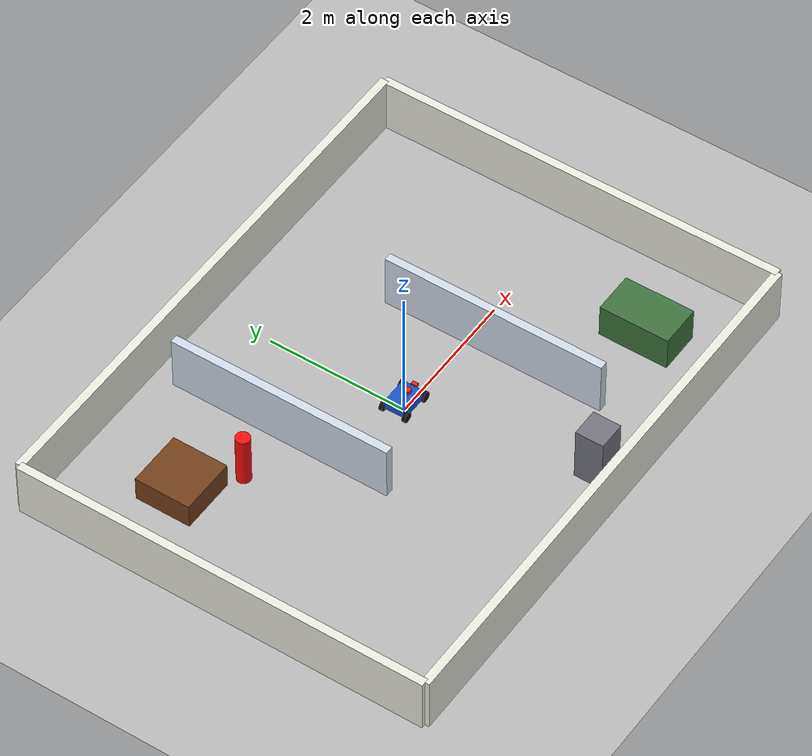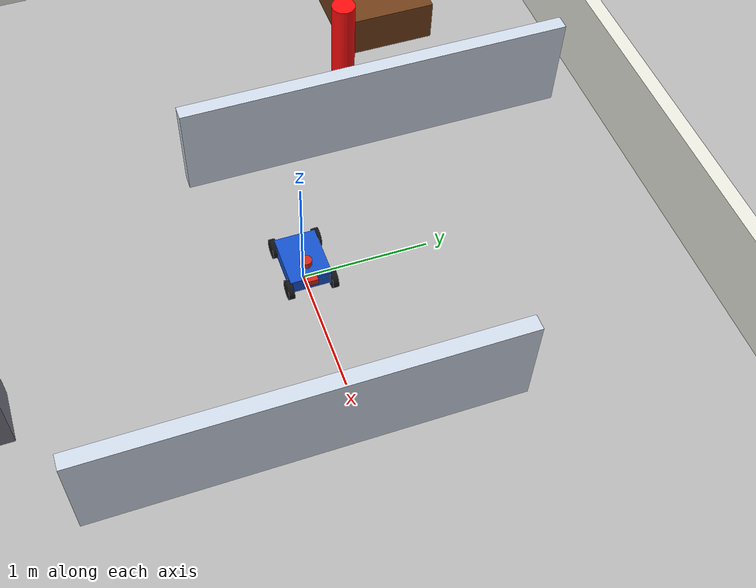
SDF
<?xml version="1.0"?>
<sdf version="1.9">
  <world name="three_room_house">
    <!-- 物理步长 1ms；real_time_factor 目标 1.0（WSL2 上实际常跑不满） -->
    <physics name="default_physics" type="ignored">
      <max_step_size>0.001</max_step_size>
      <real_time_factor>1.0</real_time_factor>
    </physics>

    <!-- Gazebo 世界必备的系统插件：物理引擎、用户命令、场景广播（GUI
         要靠它看到画面）、传感器渲染（激光/相机）、IMU 仿真 -->
    <plugin filename="gz-sim-physics-system" name="gz::sim::systems::Physics"/>
    <plugin filename="gz-sim-user-commands-system" name="gz::sim::systems::UserCommands"/>
    <plugin filename="gz-sim-scene-broadcaster-system" name="gz::sim::systems::SceneBroadcaster"/>
    <plugin filename="gz-sim-sensors-system" name="gz::sim::systems::Sensors">
      <render_engine>ogre2</render_engine>
    </plugin>
    <plugin filename="gz-sim-imu-system" name="gz::sim::systems::Imu"/>

    <scene>
      <ambient>0.7 0.7 0.7 1</ambient>
      <background>0.85 0.90 0.95 1</background>
      <shadows>true</shadows>
    </scene>

    <light name="sun" type="directional">
      <cast_shadows>true</cast_shadows>
      <pose>0 0 10 0 0 0</pose>
      <diffuse>0.9 0.9 0.9 1</diffuse>
      <specular>0.2 0.2 0.2 1</specular>
      <direction>-0.5 0.3 -1</direction>
    </light>

    <model name="ground">
      <static>true</static>
      <link name="ground_link">
        <collision name="collision"><geometry><plane><normal>0 0 1</normal><size>30 30</size></plane></geometry></collision>
        <visual name="visual">
          <geometry><plane><normal>0 0 1</normal><size>30 30</size></plane></geometry>
          <material><diffuse>0.72 0.72 0.72 1</diffuse></material>
        </visual>
      </link>
    </model>

    <!-- 房屋本体：static=true 表示不参与动力学（不会被撞动），
         所有墙和家具都挂在同一个 link 下，每件东西一对
         collision（物理碰撞体）+ visual（外观）。
         墙高 0.8m、厚 0.12m，激光安装高度 0.19m 能稳定扫到。 -->
    <model name="three_room_house">
      <static>true</static>
      <link name="walls">
        <collision name="north"><pose>0 2.95 0.4 0 0 0</pose><geometry><box><size>7.8 0.12 0.8</size></box></geometry></collision>
        <visual name="north_visual"><pose>0 2.95 0.4 0 0 0</pose><geometry><box><size>7.8 0.12 0.8</size></box></geometry><material><diffuse>0.92 0.92 0.88 1</diffuse></material></visual>
        <collision name="south"><pose>0 -2.95 0.4 0 0 0</pose><geometry><box><size>7.8 0.12 0.8</size></box></geometry></collision>
        <visual name="south_visual"><pose>0 -2.95 0.4 0 0 0</pose><geometry><box><size>7.8 0.12 0.8</size></box></geometry><material><diffuse>0.92 0.92 0.88 1</diffuse></material></visual>
        <collision name="west"><pose>-3.9 0 0.4 0 0 0</pose><geometry><box><size>0.12 5.9 0.8</size></box></geometry></collision>
        <visual name="west_visual"><pose>-3.9 0 0.4 0 0 0</pose><geometry><box><size>0.12 5.9 0.8</size></box></geometry><material><diffuse>0.92 0.92 0.88 1</diffuse></material></visual>
        <collision name="east"><pose>3.9 0 0.4 0 0 0</pose><geometry><box><size>0.12 5.9 0.8</size></box></geometry></collision>
        <visual name="east_visual"><pose>3.9 0 0.4 0 0 0</pose><geometry><box><size>0.12 5.9 0.8</size></box></geometry><material><diffuse>0.92 0.92 0.88 1</diffuse></material></visual>
        <collision name="divider_left"><pose>-1.2 1.0 0.4 0 0 0</pose><geometry><box><size>0.12 3.2 0.8</size></box></geometry></collision>
        <visual name="divider_left_visual"><pose>-1.2 1.0 0.4 0 0 0</pose><geometry><box><size>0.12 3.2 0.8</size></box></geometry><material><diffuse>0.82 0.86 0.92 1</diffuse></material></visual>
        <collision name="divider_right"><pose>1.4 -0.4 0.4 0 0 0</pose><geometry><box><size>0.12 3.2 0.8</size></box></geometry></collision>
        <visual name="divider_right_visual"><pose>1.4 -0.4 0.4 0 0 0</pose><geometry><box><size>0.12 3.2 0.8</size></box></geometry><material><diffuse>0.82 0.86 0.92 1</diffuse></material></visual>
        <collision name="table"><pose>-2.6 1.5 0.18 0 0 0</pose><geometry><box><size>0.8 0.8 0.36</size></box></geometry></collision>
        <visual name="table_visual"><pose>-2.6 1.5 0.18 0 0 0</pose><geometry><box><size>0.8 0.8 0.36</size></box></geometry><material><diffuse>0.45 0.25 0.10 1</diffuse></material></visual>
        <collision name="cabinet"><pose>2.7 -1.8 0.25 0 0 0</pose><geometry><box><size>0.6 1.0 0.5</size></box></geometry></collision>
        <visual name="cabinet_visual"><pose>2.7 -1.8 0.25 0 0 0</pose><geometry><box><size>0.6 1.0 0.5</size></box></geometry><material><diffuse>0.25 0.45 0.25 1</diffuse></material></visual>
        <collision name="pillar"><pose>0.5 -2.5 0.4 0 0 0</pose><geometry><box><size>0.4 0.4 0.8</size></box></geometry></collision>
        <visual name="pillar_visual"><pose>0.5 -2.5 0.4 0 0 0</pose><geometry><box><size>0.4 0.4 0.8</size></box></geometry><material><diffuse>0.45 0.45 0.50 1</diffuse></material></visual>
      </link>
    </model>

    <include>
      <uri>model://mecamind_mecanum</uri>
    </include>

    <!-- 第五课视觉跟随：细红柱，默认出生在客厅 L 轨迹起点；
         mover 会把小车摆到起点后方，并驱动红柱走跨房间 L 形折线 -->
    <include>
      <uri>model://follow_target</uri>
      <name>follow_target</name>
      <pose>-2.0 1.0 0.38 0 0 0</pose>
    </include>
  </world>
</sdf>

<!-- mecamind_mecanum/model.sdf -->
<sdf version="1.9">
  <model name="mecamind_mecanum">
    <!-- 与轻量仿真一致，出生在地图原点，便于共用建图路线 -->
    <pose>0 0 0.10 0 0 0</pose>
    <self_collide>false</self_collide>

    <link name="base_link">
      <inertial>
        <mass>8.0</mass>
        <inertia>
          <ixx>0.08</ixx><iyy>0.12</iyy><izz>0.16</izz>
          <ixy>0</ixy><ixz>0</ixz><iyz>0</iyz>
        </inertia>
      </inertial>
      <collision name="base_collision">
        <pose>0 0 0.10 0 0 0</pose>
        <geometry><box><size>0.42 0.32 0.12</size></box></geometry>
      </collision>
      <visual name="base_visual">
        <pose>0 0 0.10 0 0 0</pose>
        <geometry><box><size>0.42 0.32 0.12</size></box></geometry>
        <material><diffuse>0.08 0.32 0.80 1</diffuse><ambient>0.05 0.20 0.50 1</ambient></material>
      </visual>
    </link>

    <link name="front_left_wheel">
      <pose>0.20 0.17 0.075 0 0 0</pose>
      <inertial><mass>0.35</mass><inertia><ixx>0.001</ixx><iyy>0.001</iyy><izz>0.001</izz></inertia></inertial>
      <visual name="visual">
        <pose>0 0 0 1.5708 0 0</pose>
        <geometry><cylinder><radius>0.075</radius><length>0.045</length></cylinder></geometry>
        <material><diffuse>0.08 0.08 0.10 1</diffuse></material>
      </visual>
      <collision name="collision">
        <geometry><sphere><radius>0.075</radius></sphere></geometry>
        <surface><friction><ode><mu>1.0</mu><mu2>0.0</mu2><fdir1 gz:expressed_in="base_link">1 -1 0</fdir1></ode></friction></surface>
      </collision>
    </link>

    <link name="front_right_wheel">
      <pose>0.20 -0.17 0.075 0 0 0</pose>
      <inertial><mass>0.35</mass><inertia><ixx>0.001</ixx><iyy>0.001</iyy><izz>0.001</izz></inertia></inertial>
      <visual name="visual">
        <pose>0 0 0 1.5708 0 0</pose>
        <geometry><cylinder><radius>0.075</radius><length>0.045</length></cylinder></geometry>
        <material><diffuse>0.08 0.08 0.10 1</diffuse></material>
      </visual>
      <collision name="collision">
        <geometry><sphere><radius>0.075</radius></sphere></geometry>
        <surface><friction><ode><mu>1.0</mu><mu2>0.0</mu2><fdir1 gz:expressed_in="base_link">1 1 0</fdir1></ode></friction></surface>
      </collision>
    </link>

    <link name="rear_left_wheel">
      <pose>-0.20 0.17 0.075 0 0 0</pose>
      <inertial><mass>0.35</mass><inertia><ixx>0.001</ixx><iyy>0.001</iyy><izz>0.001</izz></inertia></inertial>
      <visual name="visual">
        <pose>0 0 0 1.5708 0 0</pose>
        <geometry><cylinder><radius>0.075</radius><length>0.045</length></cylinder></geometry>
        <material><diffuse>0.08 0.08 0.10 1</diffuse></material>
      </visual>
      <collision name="collision">
        <geometry><sphere><radius>0.075</radius></sphere></geometry>
        <surface><friction><ode><mu>1.0</mu><mu2>0.0</mu2><fdir1 gz:expressed_in="base_link">1 1 0</fdir1></ode></friction></surface>
      </collision>
    </link>

    <link name="rear_right_wheel">
      <pose>-0.20 -0.17 0.075 0 0 0</pose>
      <inertial><mass>0.35</mass><inertia><ixx>0.001</ixx><iyy>0.001</iyy><izz>0.001</izz></inertia></inertial>
      <visual name="visual">
        <pose>0 0 0 1.5708 0 0</pose>
        <geometry><cylinder><radius>0.075</radius><length>0.045</length></cylinder></geometry>
        <material><diffuse>0.08 0.08 0.10 1</diffuse></material>
      </visual>
      <collision name="collision">
        <geometry><sphere><radius>0.075</radius></sphere></geometry>
        <surface><friction><ode><mu>1.0</mu><mu2>0.0</mu2><fdir1 gz:expressed_in="base_link">1 -1 0</fdir1></ode></friction></surface>
      </collision>
    </link>

    <joint name="front_left_wheel_joint" type="revolute">
      <parent>base_link</parent><child>front_left_wheel</child>
      <axis><xyz>0 1 0</xyz></axis>
    </joint>
    <joint name="front_right_wheel_joint" type="revolute">
      <parent>base_link</parent><child>front_right_wheel</child>
      <axis><xyz>0 1 0</xyz></axis>
    </joint>
    <joint name="rear_left_wheel_joint" type="revolute">
      <parent>base_link</parent><child>rear_left_wheel</child>
      <axis><xyz>0 1 0</xyz></axis>
    </joint>
    <joint name="rear_right_wheel_joint" type="revolute">
      <parent>base_link</parent><child>rear_right_wheel</child>
      <axis><xyz>0 1 0</xyz></axis>
    </joint>

    <link name="lidar_link">
      <pose>0.08 0 0.19 0 0 0</pose>
      <visual name="visual">
        <geometry><cylinder><radius>0.045</radius><length>0.05</length></cylinder></geometry>
        <material><diffuse>0.85 0.15 0.10 1</diffuse></material>
      </visual>
      <sensor name="lidar" type="gpu_lidar">
        <topic>/scan</topic>
        <gz_frame_id>lidar_link</gz_frame_id>
        <update_rate>10</update_rate>
        <lidar>
          <scan>
            <horizontal><samples>360</samples><resolution>1</resolution><min_angle>-3.14159</min_angle><max_angle>3.14159</max_angle></horizontal>
          </scan>
          <range><min>0.12</min><max>8.0</max><resolution>0.01</resolution></range>
          <noise><type>gaussian</type><mean>0</mean><stddev>0.005</stddev></noise>
        </lidar>
        <always_on>true</always_on>
        <visualize>true</visualize>
      </sensor>
    </link>
    <joint name="lidar_joint" type="fixed"><parent>base_link</parent><child>lidar_link</child></joint>

    <link name="imu_link">
      <pose>0 0 0.15 0 0 0</pose>
      <sensor name="imu" type="imu">
        <topic>/imu</topic><gz_frame_id>imu_link</gz_frame_id>
        <update_rate>50</update_rate><always_on>true</always_on>
      </sensor>
    </link>
    <joint name="imu_joint" type="fixed"><parent>base_link</parent><child>imu_link</child></joint>

    <link name="camera_link">
      <pose>0.23 0 0.16 0 0 0</pose>
      <visual name="visual">
        <geometry><box><size>0.055 0.08 0.05</size></box></geometry>
        <material><diffuse>0.85 0.15 0.10 1</diffuse></material>
      </visual>
      <sensor name="camera" type="camera">
        <topic>/camera</topic>
        <gz_frame_id>camera_optical_frame</gz_frame_id>
        <update_rate>15</update_rate>
        <camera>
          <horizontal_fov>1.047</horizontal_fov>
          <image><width>640</width><height>480</height><format>R8G8B8</format></image>
          <clip><near>0.05</near><far>20</far></clip>
        </camera>
        <always_on>true</always_on>
      </sensor>
    </link>
    <joint name="camera_joint" type="fixed"><parent>base_link</parent><child>camera_link</child></joint>

    <plugin filename="gz-sim-joint-state-publisher-system" name="gz::sim::systems::JointStatePublisher">
      <topic>/joint_states</topic>
      <joint_name>front_left_wheel_joint</joint_name>
      <joint_name>front_right_wheel_joint</joint_name>
      <joint_name>rear_left_wheel_joint</joint_name>
      <joint_name>rear_right_wheel_joint</joint_name>
    </plugin>

    <plugin filename="gz-sim-mecanum-drive-system" name="gz::sim::systems::MecanumDrive">
      <front_left_joint>front_left_wheel_joint</front_left_joint>
      <front_right_joint>front_right_wheel_joint</front_right_joint>
      <back_left_joint>rear_left_wheel_joint</back_left_joint>
      <back_right_joint>rear_right_wheel_joint</back_right_joint>
      <wheel_separation>0.34</wheel_separation>
      <wheelbase>0.40</wheelbase>
      <wheel_radius>0.075</wheel_radius>
      <topic>/cmd_vel</topic>
      <odom_topic>/odom</odom_topic>
      <tf_topic>/gz/tf</tf_topic>
      <frame_id>odom</frame_id>
      <child_frame_id>base_footprint</child_frame_id>
      <odom_publish_frequency>30</odom_publish_frequency>
      <min_acceleration>-1.5</min_acceleration>
      <max_acceleration>1.5</max_acceleration>
    </plugin>
  </model>
</sdf>

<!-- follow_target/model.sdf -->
<!--
  视觉跟随用的红色圆柱目标。

  【尺寸故意偏细】半径 0.10m：在车前方约 1m 处，画面里宽度大约
  0.15~0.20（小于控制器 desired_width=0.25），这样才会触发前进；
  若做成粗柱贴脸，车只会原地转向、几乎不往前开。

  static=true：位姿由 follow_target_mover 通过 gz set_pose 驱动。
-->
<sdf version="1.9">
  <model name="follow_target">
    <static>true</static>
    <pose>0 0 0 0 0 0</pose>
    <link name="body">
      <visual name="visual">
        <geometry>
          <cylinder>
            <radius>0.10</radius>
            <length>0.75</length>
          </cylinder>
        </geometry>
        <material>
          <ambient>1.0 0.0 0.0 1</ambient>
          <diffuse>1.0 0.05 0.05 1</diffuse>
          <specular>0.05 0.05 0.05 1</specular>
          <emissive>0.85 0.0 0.0 1</emissive>
        </material>
      </visual>
      <collision name="collision">
        <geometry>
          <cylinder>
            <radius>0.10</radius>
            <length>0.75</length>
          </cylinder>
        </geometry>
      </collision>
    </link>
  </model>
</sdf>
